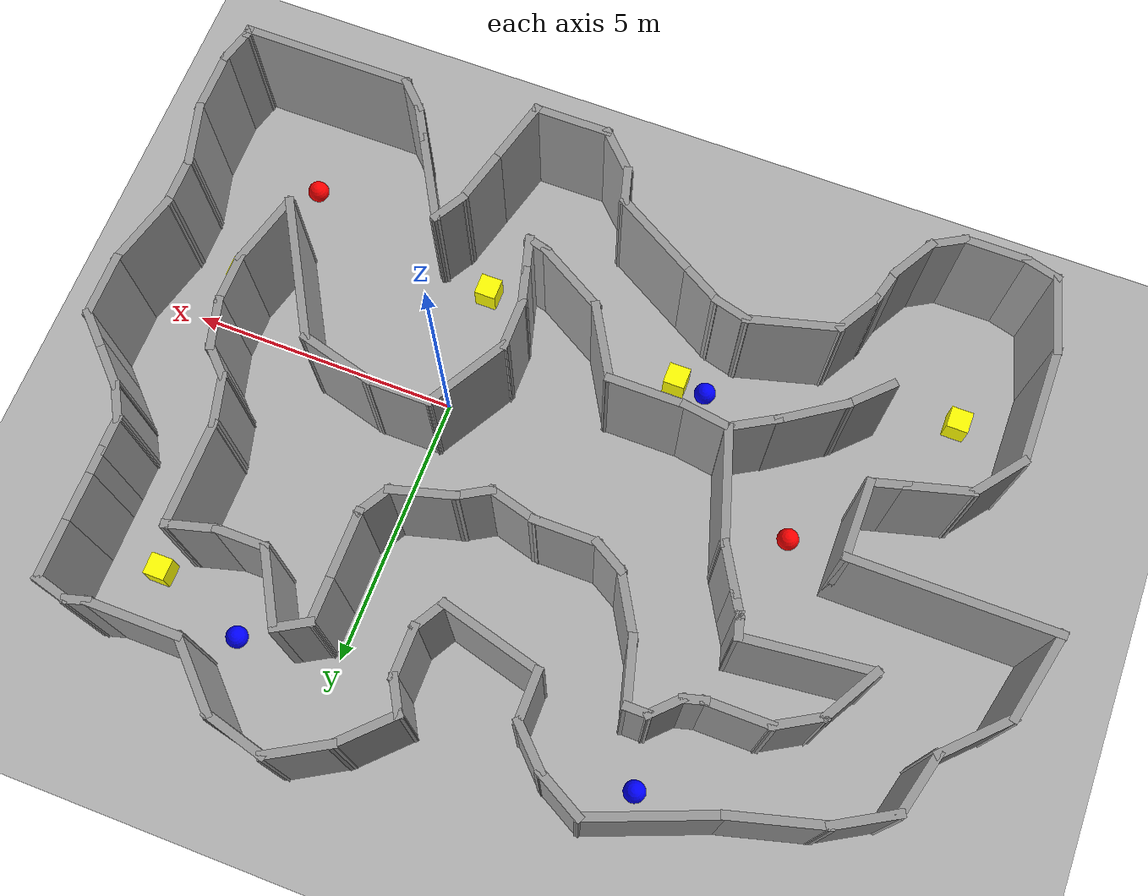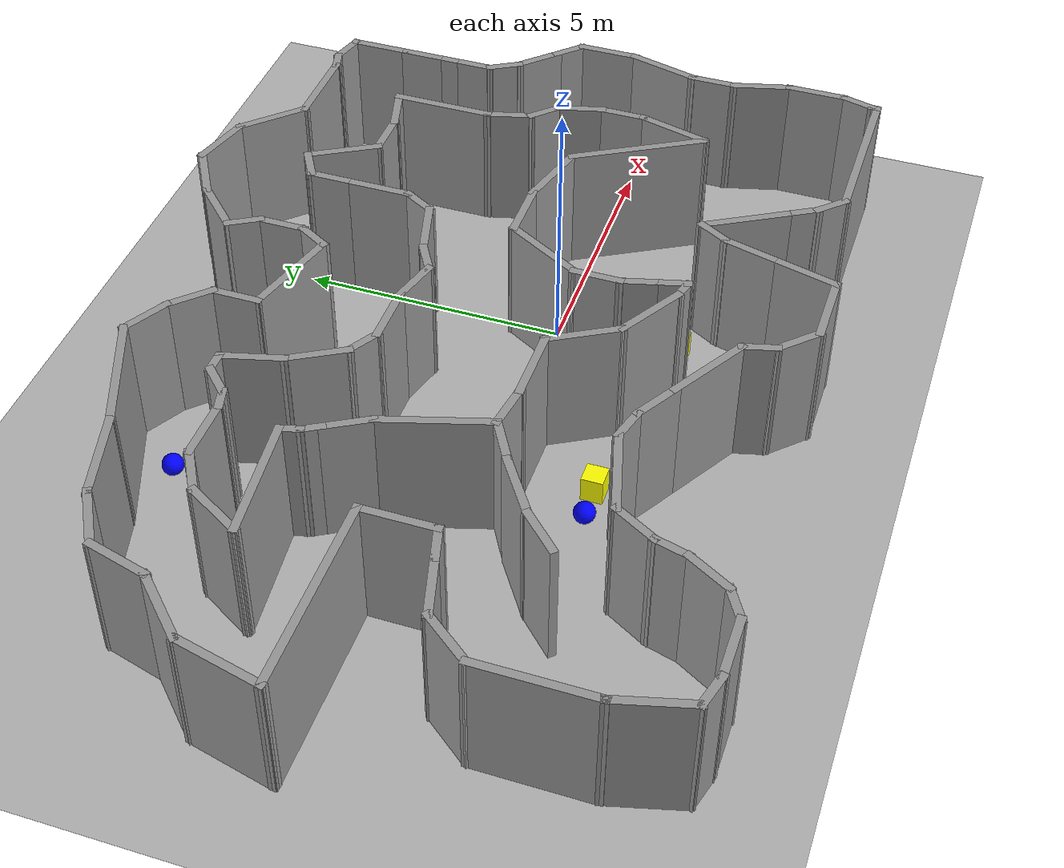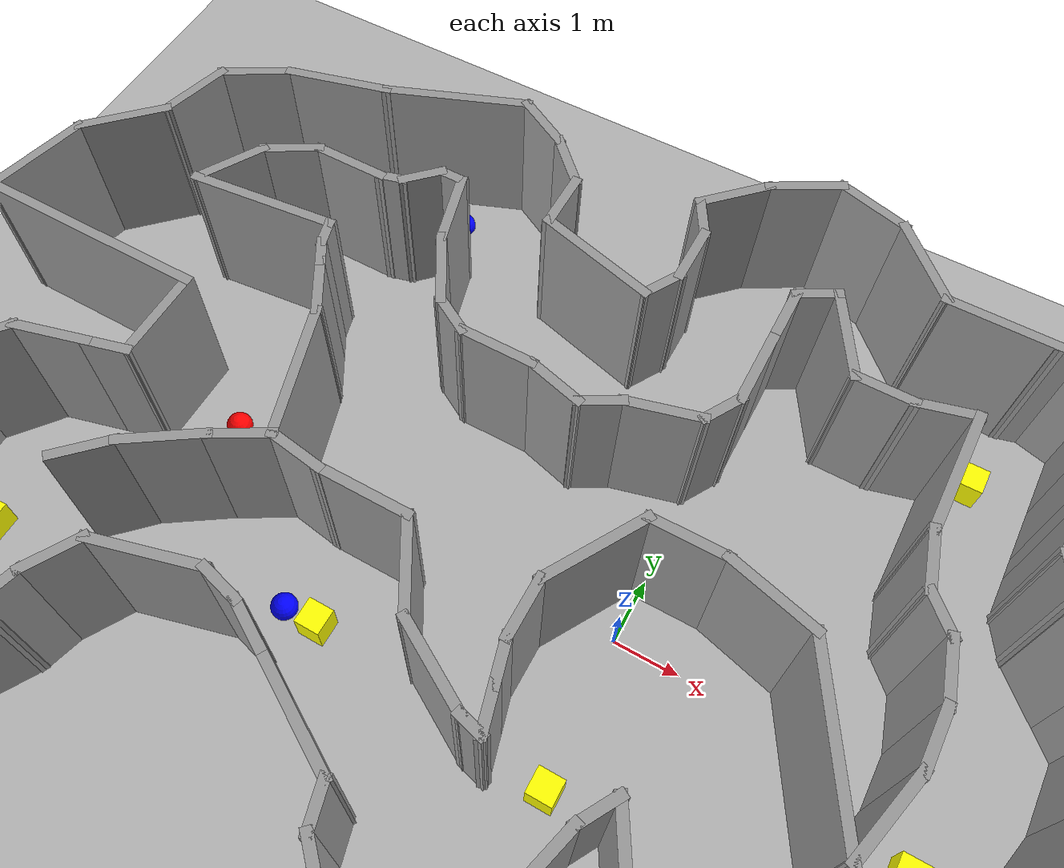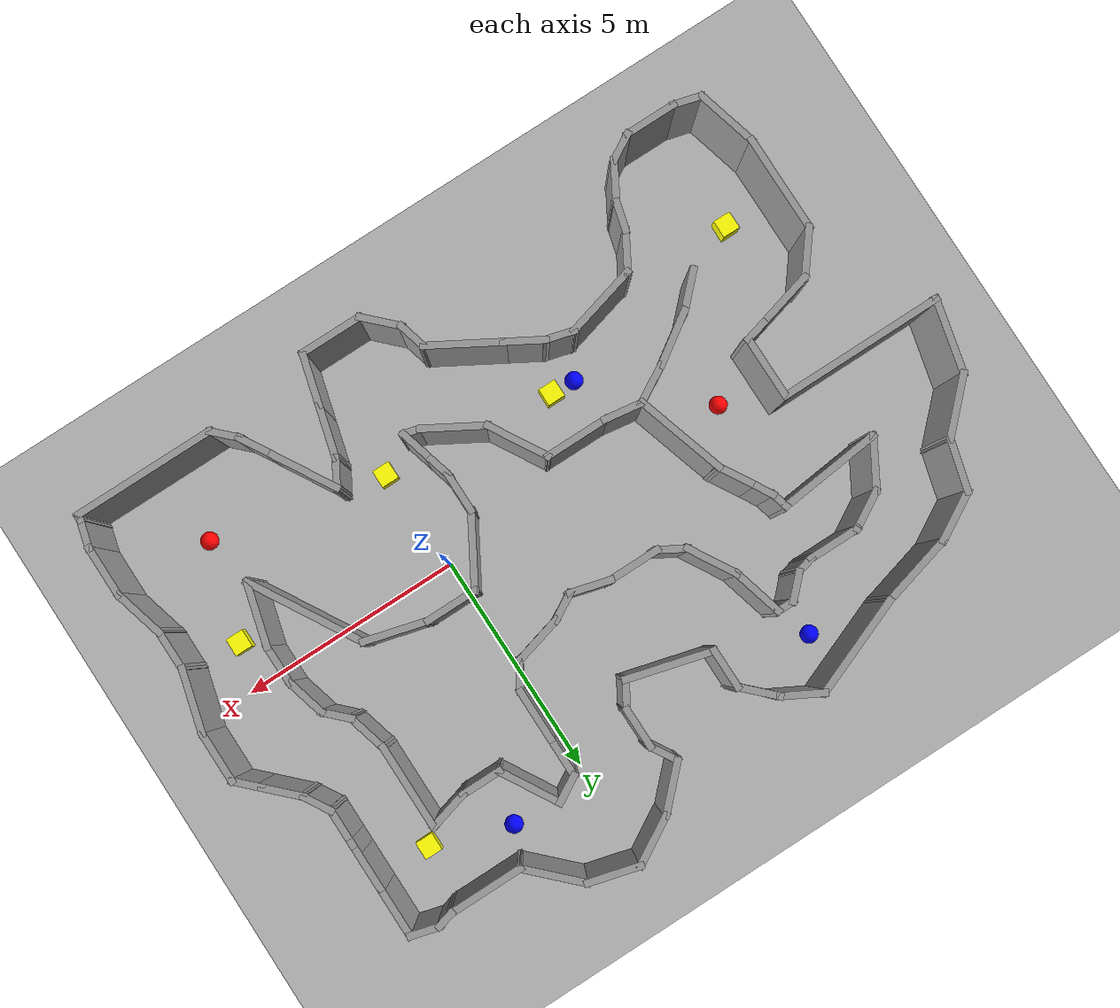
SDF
<?xml version="1.0" ?>
<sdf version="1.7">
  <world name="patrol_world">
    <gui fullscreen='0'>
      <camera name='user_camera'>
        <pose>0 0 18 0 1.5708 0</pose>
        <view_controller>orbit</view_controller>
        <projection_type>perspective</projection_type>
      </camera>
    </gui>
    <include>
      <uri>model://sun</uri>
    </include>

    <model name="ground">
      <static>true</static>
      <link name="ground_link">
        <collision name="ground_collision">
          <geometry>
            <plane>
              <normal>0 0 1</normal>
              <size>50 50</size>
            </plane>
          </geometry>
          <surface>
            <friction>
              <ode>
                <mu>1.0</mu>
                <mu2>1.0</mu2>
              </ode>
            </friction>
          </surface>
        </collision>
        <visual name="ground_visual">
          <geometry>
            <plane>
              <normal>0 0 1</normal>
              <size>50 50</size>
            </plane>
          </geometry>
          <material>
            <ambient>0.7 0.7 0.7 1</ambient>
          </material>
        </visual>
      </link>
    </model>

    <include>
      <uri>model://patrol_environment</uri>
      <pose>-2.57827 0.945924 0 0 0 0</pose>
    </include>

    <plugin name="gazebo_ros_state" filename="libgazebo_ros_state.so">
      <ros>
        <namespace>/</namespace>
      </ros>
      <update_rate>10.0</update_rate>
    </plugin>

    <model name="obstacle_1">
      <static>false</static>
      <pose>3.531 4.683 0.25 0 0 0</pose>
      <link name="obstacle_1_link">
        <gravity>false</gravity>
        <self_collide>false</self_collide>
        <kinematic>true</kinematic>
        <inertial>
          <mass>1.0</mass>
          <inertia>
            <ixx>0.01</ixx>
            <ixy>0.0</ixy>
            <ixz>0.0</ixz>
            <iyy>0.01</iyy>
            <iyz>0.0</iyz>
            <izz>0.01</izz>
          </inertia>
        </inertial>
        <collision name="obstacle_1_collision">
          <geometry>
            <box>
              <size>0.4 0.4 0.5</size>
            </box>
          </geometry>
        </collision>
        <visual name="obstacle_1_visual">
          <geometry>
            <box>
              <size>0.4 0.4 0.5</size>
            </box>
          </geometry>
          <material>
            <ambient>1 1 0 1</ambient>
            <diffuse>1 1 0 1</diffuse>
          </material>
        </visual>
      </link>
    </model>

    <model name="obstacle_2">
      <static>false</static>
      <pose>4.585 -0.999 0.25 0 0 0</pose>
      <link name="obstacle_2_link">
        <gravity>false</gravity>
        <self_collide>false</self_collide>
        <kinematic>true</kinematic>
        <inertial>
          <mass>1.0</mass>
          <inertia>
            <ixx>0.01</ixx>
            <ixy>0.0</ixy>
            <ixz>0.0</ixz>
            <iyy>0.01</iyy>
            <iyz>0.0</iyz>
            <izz>0.01</izz>
          </inertia>
        </inertial>
        <collision name="obstacle_2_collision">
          <geometry>
            <box>
              <size>0.4 0.4 0.5</size>
            </box>
          </geometry>
        </collision>
        <visual name="obstacle_2_visual">
          <geometry>
            <box>
              <size>0.4 0.4 0.5</size>
            </box>
          </geometry>
          <material>
            <ambient>1 1 0 1</ambient>
            <diffuse>1 1 0 1</diffuse>
          </material>
        </visual>
      </link>
    </model>

    <model name="obstacle_3">
      <static>false</static>
      <pose>0.130 -2.308 0.25 0 0 0</pose>
      <link name="obstacle_3_link">
        <gravity>false</gravity>
        <self_collide>false</self_collide>
        <kinematic>true</kinematic>
        <inertial>
          <mass>1.0</mass>
          <inertia>
            <ixx>0.01</ixx>
            <ixy>0.0</ixy>
            <ixz>0.0</ixz>
            <iyy>0.01</iyy>
            <iyz>0.0</iyz>
            <izz>0.01</izz>
          </inertia>
        </inertial>
        <collision name="obstacle_3_collision">
          <geometry>
            <box>
              <size>0.4 0.4 0.5</size>
            </box>
          </geometry>
        </collision>
        <visual name="obstacle_3_visual">
          <geometry>
            <box>
              <size>0.4 0.4 0.5</size>
            </box>
          </geometry>
          <material>
            <ambient>1 1 0 1</ambient>
            <diffuse>1 1 0 1</diffuse>
          </material>
        </visual>
      </link>
    </model>

    <model name="obstacle_4">
      <static>false</static>
      <pose>-3.733 -1.870 0.25 0 0 0</pose>
      <link name="obstacle_4_link">
        <gravity>false</gravity>
        <self_collide>false</self_collide>
        <kinematic>true</kinematic>
        <inertial>
          <mass>1.0</mass>
          <inertia>
            <ixx>0.01</ixx>
            <ixy>0.0</ixy>
            <ixz>0.0</ixz>
            <iyy>0.01</iyy>
            <iyz>0.0</iyz>
            <izz>0.01</izz>
          </inertia>
        </inertial>
        <collision name="obstacle_4_collision">
          <geometry>
            <box>
              <size>0.4 0.4 0.5</size>
            </box>
          </geometry>
        </collision>
        <visual name="obstacle_4_visual">
          <geometry>
            <box>
              <size>0.4 0.4 0.5</size>
            </box>
          </geometry>
          <material>
            <ambient>1 1 0 1</ambient>
            <diffuse>1 1 0 1</diffuse>
          </material>
        </visual>
      </link>
    </model>

    <model name="obstacle_5">
      <static>false</static>
      <pose>-8.776 -2.864 0.25 0 0 0</pose>
      <link name="obstacle_5_link">
        <gravity>false</gravity>
        <self_collide>false</self_collide>
        <kinematic>true</kinematic>
        <inertial>
          <mass>1.0</mass>
          <inertia>
            <ixx>0.01</ixx>
            <ixy>0.0</ixy>
            <ixz>0.0</ixz>
            <iyy>0.01</iyy>
            <iyz>0.0</iyz>
            <izz>0.01</izz>
          </inertia>
        </inertial>
        <collision name="obstacle_5_collision">
          <geometry>
            <box>
              <size>0.4 0.4 0.5</size>
            </box>
          </geometry>
        </collision>
        <visual name="obstacle_5_visual">
          <geometry>
            <box>
              <size>0.4 0.4 0.5</size>
            </box>
          </geometry>
          <material>
            <ambient>1 1 0 1</ambient>
            <diffuse>1 1 0 1</diffuse>
          </material>
        </visual>
      </link>
    </model>
  </world>
</sdf>
